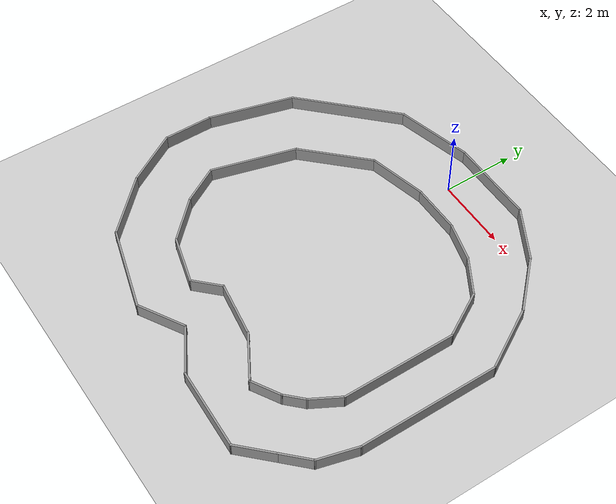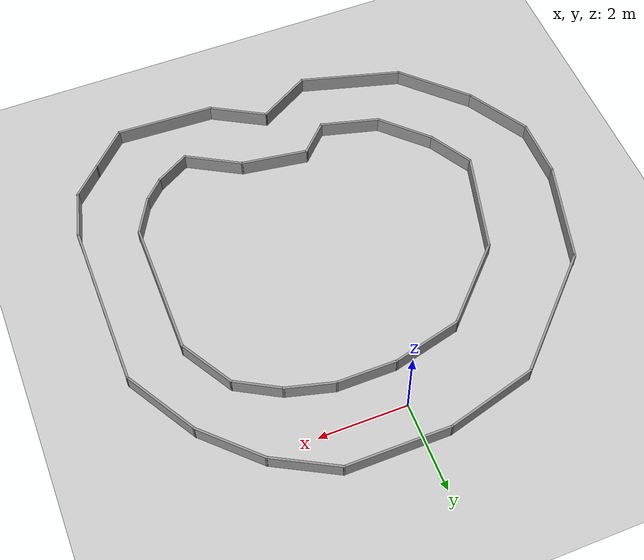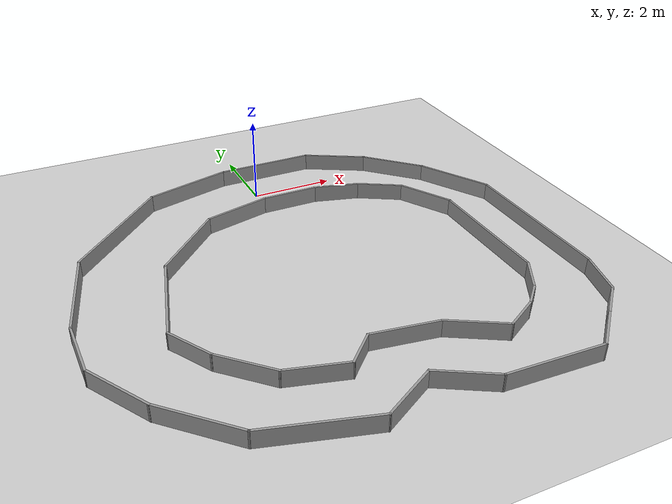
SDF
<sdf version="1.7">
 <world name="default">
  <light name="sun" type="directional">
   <pose>0 0 10 0 -0 0</pose>
   <diffuse>0.8 0.8 0.8 1</diffuse>
   <specular>0.2 0.2 0.2 1</specular>
   <attenuation>
    <range>1000</range>
    <constant>0.9</constant>
    <linear>0.01</linear>
    <quadratic>0.001</quadratic>
   </attenuation>
   <direction>-0.5 0.1 -0.9</direction>
   <spot><inner_angle>0</inner_angle><outer_angle>0</outer_angle><falloff>0</falloff></spot>
  </light>
  <model name="ground_plane">
   <static>1</static>
   <link name="link">
    <collision name="collision">
     <geometry><plane><normal>0 0 1</normal><size>100 100</size></plane></geometry>
     <surface>
      <contact><collide_bitmask>65535</collide_bitmask></contact>
      <friction><ode><mu>100</mu><mu2>50</mu2></ode></friction>
     </surface>
    </collision>
    <visual name="visual">
     <cast_shadows>0</cast_shadows>
     <geometry><plane><normal>0 0 1</normal><size>100 100</size></plane></geometry>
     <material>
      <script><uri>file://media/materials/scripts/gazebo.material</uri><name>Gazebo/Grey</name></script>
     </material>
    </visual>
   </link>
  </model>
  <gravity>0 0 -9.8</gravity>
  <magnetic_field>6e-06 2.3e-05 -4.2e-05</magnetic_field>
  <atmosphere type="adiabatic"/>
  <physics type="ode">
   <max_step_size>0.001</max_step_size>
   <real_time_factor>1</real_time_factor>
   <real_time_update_rate>1000</real_time_update_rate>
  </physics>
  <scene><ambient>0.4 0.4 0.4 1</ambient><background>0.7 0.7 0.7 1</background><shadows>1</shadows></scene>
  <audio><device>default</device></audio>
  <spherical_coordinates>
   <surface_model>EARTH_WGS84</surface_model>
   <latitude_deg>0</latitude_deg>
   <longitude_deg>0</longitude_deg>
   <elevation>0</elevation>
   <heading_deg>0</heading_deg>
  </spherical_coordinates>
  <model name="race_track">
   <pose>-0.084094 -3.95823 0 0 -0 0</pose>
   <link name="Wall_19">
    <collision name="Wall_19_Collision">
     <geometry><box><size>3.15 0.05 0.4</size></box></geometry>
     <pose>0 0 0.2 0 -0 0</pose>
    </collision>
    <visual name="Wall_19_Visual">
     <pose>0 0 0.2 0 -0 0</pose>
     <geometry><box><size>3.15 0.05 0.4</size></box></geometry>
     <material>
      <script><uri>file://media/materials/scripts/gazebo.material</uri><name>Gazebo/Grey</name></script>
      <ambient>1 1 1 1</ambient>
     </material>
     <meta><layer>0</layer></meta>
    </visual>
    <pose>4.01704 -0.456858 0 0 -0 1.5708</pose>
   </link>
   <link name="Wall_20">
    <collision name="Wall_20_Collision">
     <geometry><box><size>1.39988 0.05 0.4</size></box></geometry>
     <pose>0 0 0.2 0 -0 0</pose>
    </collision>
    <visual name="Wall_20_Visual">
     <pose>0 0 0.2 0 -0 0</pose>
     <geometry><box><size>1.39988 0.05 0.4</size></box></geometry>
     <material>
      <script><uri>file://media/materials/scripts/gazebo.material</uri><name>Gazebo/Grey</name></script>
      <ambient>1 1 1 1</ambient>
     </material>
     <meta><layer>0</layer></meta>
    </visual>
    <pose>3.67954 1.67764 0 0 -0 2.09444</pose>
   </link>
   <link name="Wall_21">
    <collision name="Wall_21_Collision">
     <geometry><box><size>1.15032 0.05 0.4</size></box></geometry>
     <pose>0 0 0.2 0 -0 0</pose>
    </collision>
    <visual name="Wall_21_Visual">
     <pose>0 0 0.2 0 -0 0</pose>
     <geometry><box><size>1.15032 0.05 0.4</size></box></geometry>
     <material>
      <script><uri>file://media/materials/scripts/gazebo.material</uri><name>Gazebo/Grey</name></script>
      <ambient>1 1 1 1</ambient>
     </material>
     <meta><layer>0</layer></meta>
    </visual>
    <pose>2.86554 2.53714 0 0 -0 2.61816</pose>
   </link>
   <link name="Wall_22">
    <collision name="Wall_22_Collision">
     <geometry><box><size>1.14958 0.05 0.4</size></box></geometry>
     <pose>0 0 0.2 0 -0 0</pose>
    </collision>
    <visual name="Wall_22_Visual">
     <pose>0 0 0.2 0 -0 0</pose>
     <geometry><box><size>1.14958 0.05 0.4</size></box></geometry>
     <material>
      <script><uri>file://media/materials/scripts/gazebo.material</uri><name>Gazebo/Grey</name></script>
      <ambient>1 1 1 1</ambient>
     </material>
     <meta><layer>0</layer></meta>
    </visual>
    <pose>1.85804 2.95464 0 0 -0 2.87941</pose>
   </link>
   <link name="Wall_23">
    <collision name="Wall_23_Collision">
     <geometry><box><size>1.40034 0.05 0.4</size></box></geometry>
     <pose>0 0 0.2 0 -0 0</pose>
    </collision>
    <visual name="Wall_23_Visual">
     <pose>0 0 0.2 0 -0 0</pose>
     <geometry><box><size>1.40034 0.05 0.4</size></box></geometry>
     <material>
      <script><uri>file://media/materials/scripts/gazebo.material</uri><name>Gazebo/Grey</name></script>
      <ambient>1 1 1 1</ambient>
     </material>
     <meta><layer>0</layer></meta>
    </visual>
    <pose>0.652043 3.09714 0 0 -0 3.14159</pose>
   </link>
   <link name="Wall_24">
    <collision name="Wall_24_Collision">
     <geometry><box><size>1.6428 0.05 0.4</size></box></geometry>
     <pose>0 0 0.2 0 -0 0</pose>
    </collision>
    <visual name="Wall_24_Visual">
     <pose>0 0 0.2 0 -0 0</pose>
     <geometry><box><size>1.6428 0.05 0.4</size></box></geometry>
     <material>
      <script><uri>file://media/materials/scripts/gazebo.material</uri><name>Gazebo/Grey</name></script>
      <ambient>1 1 1 1</ambient>
     </material>
     <meta><layer>0</layer></meta>
    </visual>
    <pose>-0.795957 2.90514 0 0 -0 -2.89814</pose>
   </link>
   <link name="Wall_25">
    <collision name="Wall_25_Collision">
     <geometry><box><size>2.17159 0.05 0.4</size></box></geometry>
     <pose>0 0 0.2 0 -0 0</pose>
    </collision>
    <visual name="Wall_25_Visual">
     <pose>0 0 0.2 0 -0 0</pose>
     <geometry><box><size>2.17159 0.05 0.4</size></box></geometry>
     <material>
      <script><uri>file://media/materials/scripts/gazebo.material</uri><name>Gazebo/Grey</name></script>
      <ambient>1 1 1 1</ambient>
     </material>
     <meta><layer>0</layer></meta>
    </visual>
    <pose>-2.31146 1.95564 0 0 -0 -2.34619</pose>
   </link>
   <link name="Wall_26">
    <collision name="Wall_26_Collision">
     <geometry><box><size>2.40039 0.05 0.4</size></box></geometry>
     <pose>0 0 0.2 0 -0 0</pose>
    </collision>
    <visual name="Wall_26_Visual">
     <pose>0 0 0.2 0 -0 0</pose>
     <geometry><box><size>2.40039 0.05 0.4</size></box></geometry>
     <material>
      <script><uri>file://media/materials/scripts/gazebo.material</uri><name>Gazebo/Grey</name></script>
      <ambient>1 1 1 1</ambient>
     </material>
     <meta><layer>0</layer></meta>
    </visual>
    <pose>-3.35796 0.063142 0 0 -0 -1.83249</pose>
   </link>
   <link name="Wall_27">
    <collision name="Wall_27_Collision">
     <geometry><box><size>1.15036 0.05 0.4</size></box></geometry>
     <pose>0 0 0.2 0 -0 0</pose>
    </collision>
    <visual name="Wall_27_Visual">
     <pose>0 0 0.2 0 -0 0</pose>
     <geometry><box><size>1.15036 0.05 0.4</size></box></geometry>
     <material>
      <script><uri>file://media/materials/scripts/gazebo.material</uri><name>Gazebo/Grey</name></script>
      <ambient>1 1 1 1</ambient>
     </material>
     <meta><layer>0</layer></meta>
    </visual>
    <pose>-3.38696 -1.54836 0 0 -0 -1.04737</pose>
   </link>
   <link name="Wall_28">
    <collision name="Wall_28_Collision">
     <geometry><box><size>1.40003 0.05 0.4</size></box></geometry>
     <pose>0 0 0.2 0 -0 0</pose>
    </collision>
    <visual name="Wall_28_Visual">
     <pose>0 0 0.2 0 -0 0</pose>
     <geometry><box><size>1.40003 0.05 0.4</size></box></geometry>
     <material>
      <script><uri>file://media/materials/scripts/gazebo.material</uri><name>Gazebo/Grey</name></script>
      <ambient>1 1 1 1</ambient>
     </material>
     <meta><layer>0</layer></meta>
    </visual>
    <pose>-2.63446 -2.50236 0 0 -0 -0.785398</pose>
   </link>
   <link name="Wall_29">
    <collision name="Wall_29_Collision">
     <geometry><box><size>1.39989 0.05 0.4</size></box></geometry>
     <pose>0 0 0.2 0 -0 0</pose>
    </collision>
    <visual name="Wall_29_Visual">
     <pose>0 0 0.2 0 -0 0</pose>
     <geometry><box><size>1.39989 0.05 0.4</size></box></geometry>
     <material>
      <script><uri>file://media/materials/scripts/gazebo.material</uri><name>Gazebo/Grey</name></script>
      <ambient>1 1 1 1</ambient>
     </material>
     <meta><layer>0</layer></meta>
    </visual>
    <pose>-1.50496 -3.15436 0 0 -0 -0.261509</pose>
   </link>
   <link name="Wall_30">
    <collision name="Wall_30_Collision">
     <geometry><box><size>0.899942 0.05 0.4</size></box></geometry>
     <pose>0 0 0.2 0 -0 0</pose>
    </collision>
    <visual name="Wall_30_Visual">
     <pose>0 0 0.2 0 -0 0</pose>
     <geometry><box><size>0.899942 0.05 0.4</size></box></geometry>
     <material>
      <script><uri>file://media/materials/scripts/gazebo.material</uri><name>Gazebo/Grey</name></script>
      <ambient>1 1 1 1</ambient>
     </material>
     <meta><layer>0</layer></meta>
    </visual>
    <pose>-0.552457 -3.02836 0 0 -0 0.785398</pose>
   </link>
   <link name="Wall_34">
    <collision name="Wall_34_Collision">
     <geometry><box><size>1.39988 0.05 0.4</size></box></geometry>
     <pose>0 0 0.2 0 -0 0</pose>
    </collision>
    <visual name="Wall_34_Visual">
     <pose>0 0 0.2 0 -0 0</pose>
     <geometry><box><size>1.39988 0.05 0.4</size></box></geometry>
     <material>
      <script><uri>file://media/materials/scripts/gazebo.material</uri><name>Gazebo/Grey</name></script>
      <ambient>1 1 1 1</ambient>
     </material>
     <meta><layer>0</layer></meta>
    </visual>
    <pose>1.84454 -3.28936 0 0 -0 -0.523649</pose>
   </link>
   <link name="Wall_35">
    <collision name="Wall_35_Collision">
     <geometry><box><size>0.900761 0.05 0.4</size></box></geometry>
     <pose>0 0 0.2 0 -0 0</pose>
    </collision>
    <visual name="Wall_35_Visual">
     <pose>0 0 0.2 0 -0 0</pose>
     <geometry><box><size>0.900761 0.05 0.4</size></box></geometry>
     <material>
      <script><uri>file://media/materials/scripts/gazebo.material</uri><name>Gazebo/Grey</name></script>
      <ambient>1 1 1 1</ambient>
     </material>
     <meta><layer>0</layer></meta>
    </visual>
    <pose>2.79754 -3.41436 0 0 -0 0.523083</pose>
   </link>
   <link name="Wall_36">
    <collision name="Wall_36_Collision">
     <geometry><box><size>0.649627 0.05 0.4</size></box></geometry>
     <pose>0 0 0.2 0 -0 0</pose>
    </collision>
    <visual name="Wall_36_Visual">
     <pose>0 0 0.2 0 -0 0</pose>
     <geometry><box><size>0.649627 0.05 0.4</size></box></geometry>
     <material>
      <script><uri>file://media/materials/scripts/gazebo.material</uri><name>Gazebo/Grey</name></script>
      <ambient>1 1 1 1</ambient>
     </material>
     <meta><layer>0</layer></meta>
    </visual>
    <pose>3.37804 -2.98986 0 0 -0 0.785398</pose>
   </link>
   <link name="Wall_37">
    <collision name="Wall_37_Collision">
     <geometry><box><size>0.931346 0.05 0.4</size></box></geometry>
     <pose>0 0 0.2 0 -0 0</pose>
    </collision>
    <visual name="Wall_37_Visual">
     <pose>0 0 0.2 0 -0 0</pose>
     <geometry><box><size>0.931346 0.05 0.4</size></box></geometry>
     <material>
      <script><uri>file://media/materials/scripts/gazebo.material</uri><name>Gazebo/Grey</name></script>
      <ambient>1 1 1 1</ambient>
     </material>
     <meta><layer>0</layer></meta>
    </visual>
    <pose>3.80354 -2.39236 0 0 -0 1.06502</pose>
   </link>
   <link name="Wall_39">
    <collision name="Wall_39_Collision">
     <geometry><box><size>1.15068 0.05 0.4</size></box></geometry>
     <pose>0 0 0.2 0 -0 0</pose>
    </collision>
    <visual name="Wall_39_Visual">
     <pose>0 0 0.2 0 -0 0</pose>
     <geometry><box><size>1.15068 0.05 0.4</size></box></geometry>
     <material>
      <script><uri>file://media/materials/scripts/gazebo.material</uri><name>Gazebo/Grey</name></script>
      <ambient>1 1 1 1</ambient>
     </material>
     <meta><layer>0</layer></meta>
    </visual>
    <pose>4.02404 -4.48336 0 0 -0 0.78604</pose>
   </link>
   <link name="Wall_40">
    <collision name="Wall_40_Collision">
     <geometry><box><size>0.899236 0.05 0.4</size></box></geometry>
     <pose>0 0 0.2 0 -0 0</pose>
    </collision>
    <visual name="Wall_40_Visual">
     <pose>0 0 0.2 0 -0 0</pose>
     <geometry><box><size>0.899236 0.05 0.4</size></box></geometry>
     <material>
      <script><uri>file://media/materials/scripts/gazebo.material</uri><name>Gazebo/Grey</name></script>
      <ambient>1 1 1 1</ambient>
     </material>
     <meta><layer>0</layer></meta>
    </visual>
    <pose>4.71354 -3.79386 0 0 -0 0.784566</pose>
   </link>
   <link name="Wall_41">
    <collision name="Wall_41_Collision">
     <geometry><box><size>1.15015 0.05 0.4</size></box></geometry>
     <pose>0 0 0.2 0 -0 0</pose>
    </collision>
    <visual name="Wall_41_Visual">
     <pose>0 0 0.2 0 -0 0</pose>
     <geometry><box><size>1.15015 0.05 0.4</size></box></geometry>
     <material>
      <script><uri>file://media/materials/scripts/gazebo.material</uri><name>Gazebo/Grey</name></script>
      <ambient>1 1 1 1</ambient>
     </material>
     <meta><layer>0</layer></meta>
    </visual>
    <pose>5.15654 -2.96236 0 0 -0 1.30885</pose>
   </link>
   <link name="Wall_42">
    <collision name="Wall_42_Collision">
     <geometry><box><size>3.869 0.05 0.4</size></box></geometry>
     <pose>0 0 0.2 0 -0 0</pose>
    </collision>
    <visual name="Wall_42_Visual">
     <pose>0 0 0.2 0 -0 0</pose>
     <geometry><box><size>3.869 0.05 0.4</size></box></geometry>
     <material>
      <script><uri>file://media/materials/scripts/gazebo.material</uri><name>Gazebo/Grey</name></script>
      <ambient>1 1 1 1</ambient>
     </material>
     <meta><layer>0</layer></meta>
    </visual>
    <pose>5.29904 -0.521358 0 0 -0 1.5708</pose>
   </link>
   <link name="Wall_43">
    <collision name="Wall_43_Collision">
     <geometry><box><size>1.89987 0.05 0.4</size></box></geometry>
     <pose>0 0 0.2 0 -0 0</pose>
    </collision>
    <visual name="Wall_43_Visual">
     <pose>0 0 0.2 0 -0 0</pose>
     <geometry><box><size>1.89987 0.05 0.4</size></box></geometry>
     <material>
      <script><uri>file://media/materials/scripts/gazebo.material</uri><name>Gazebo/Grey</name></script>
      <ambient>1 1 1 1</ambient>
     </material>
     <meta><layer>0</layer></meta>
    </visual>
    <pose>4.83654 2.18914 0 0 -0 2.09443</pose>
   </link>
   <link name="Wall_44">
    <collision name="Wall_44_Collision">
     <geometry><box><size>1.65089 0.05 0.4</size></box></geometry>
     <pose>0 0 0.2 0 -0 0</pose>
    </collision>
    <visual name="Wall_44_Visual">
     <pose>0 0 0.2 0 -0 0</pose>
     <geometry><box><size>1.65089 0.05 0.4</size></box></geometry>
     <material>
      <script><uri>file://media/materials/scripts/gazebo.material</uri><name>Gazebo/Grey</name></script>
      <ambient>1 1 1 1</ambient>
     </material>
     <meta><layer>0</layer></meta>
    </visual>
    <pose>3.80804 3.55614 0 0 -0 2.35619</pose>
   </link>
   <link name="Wall_45">
    <collision name="Wall_45_Collision">
     <geometry><box><size>1.60581 0.05 0.4</size></box></geometry>
     <pose>0 0 0.2 0 -0 0</pose>
    </collision>
    <visual name="Wall_45_Visual">
     <pose>0 0 0.2 0 -0 0</pose>
     <geometry><box><size>1.60581 0.05 0.4</size></box></geometry>
     <material>
      <script><uri>file://media/materials/scripts/gazebo.material</uri><name>Gazebo/Grey</name></script>
      <ambient>1 1 1 1</ambient>
     </material>
     <meta><layer>0</layer></meta>
    </visual>
    <pose>2.56104 4.49814 0 0 -0 2.63712</pose>
   </link>
   <link name="Wall_46">
    <collision name="Wall_46_Collision">
     <geometry><box><size>2.4 0.05 0.4</size></box></geometry>
     <pose>0 0 0.2 0 -0 0</pose>
    </collision>
    <visual name="Wall_46_Visual">
     <pose>0 0 0.2 0 -0 0</pose>
     <geometry><box><size>2.4 0.05 0.4</size></box></geometry>
     <material>
      <script><uri>file://media/materials/scripts/gazebo.material</uri><name>Gazebo/Grey</name></script>
      <ambient>1 1 1 1</ambient>
     </material>
     <meta><layer>0</layer></meta>
    </visual>
    <pose>0.705043 4.87414 0 0 -0 3.14159</pose>
   </link>
   <link name="Wall_47">
    <collision name="Wall_47_Collision">
     <geometry><box><size>2.1504 0.05 0.4</size></box></geometry>
     <pose>0 0 0.2 0 -0 0</pose>
    </collision>
    <visual name="Wall_47_Visual">
     <pose>0 0 0.2 0 -0 0</pose>
     <geometry><box><size>2.1504 0.05 0.4</size></box></geometry>
     <material>
      <script><uri>file://media/materials/scripts/gazebo.material</uri><name>Gazebo/Grey</name></script>
      <ambient>1 1 1 1</ambient>
     </material>
     <meta><layer>0</layer></meta>
    </visual>
    <pose>-1.48446 4.60264 0 0 -0 -2.8801</pose>
   </link>
   <link name="Wall_48">
    <collision name="Wall_48_Collision">
     <geometry><box><size>3.14996 0.05 0.4</size></box></geometry>
     <pose>0 0 0.2 0 -0 0</pose>
    </collision>
    <visual name="Wall_48_Visual">
     <pose>0 0 0.2 0 -0 0</pose>
     <geometry><box><size>3.14996 0.05 0.4</size></box></geometry>
     <material>
      <script><uri>file://media/materials/scripts/gazebo.material</uri><name>Gazebo/Grey</name></script>
      <ambient>1 1 1 1</ambient>
     </material>
     <meta><layer>0</layer></meta>
    </visual>
    <pose>-3.59496 3.23514 0 0 -0 -2.35619</pose>
   </link>
   <link name="Wall_49">
    <collision name="Wall_49_Collision">
     <geometry><box><size>2.40001 0.05 0.4</size></box></geometry>
     <pose>0 0 0.2 0 -0 0</pose>
    </collision>
    <visual name="Wall_49_Visual">
     <pose>0 0 0.2 0 -0 0</pose>
     <geometry><box><size>2.40001 0.05 0.4</size></box></geometry>
     <material>
      <script><uri>file://media/materials/scripts/gazebo.material</uri><name>Gazebo/Grey</name></script>
      <ambient>1 1 1 1</ambient>
     </material>
     <meta><layer>0</layer></meta>
    </visual>
    <pose>-4.99496 1.00414 0 0 -0 -1.83249</pose>
   </link>
   <link name="Wall_50">
    <collision name="Wall_50_Collision">
     <geometry><box><size>1.4 0.05 0.4</size></box></geometry>
     <pose>0 0 0.2 0 -0 0</pose>
    </collision>
    <visual name="Wall_50_Visual">
     <pose>0 0 0.2 0 -0 0</pose>
     <geometry><box><size>1.4 0.05 0.4</size></box></geometry>
     <material>
      <script><uri>file://media/materials/scripts/gazebo.material</uri><name>Gazebo/Grey</name></script>
      <ambient>1 1 1 1</ambient>
     </material>
     <meta><layer>0</layer></meta>
    </visual>
    <pose>-5.29896 -0.805858 0 0 -0 -1.5708</pose>
   </link>
   <link name="Wall_51">
    <collision name="Wall_51_Collision">
     <geometry><box><size>1.62354 0.05 0.4</size></box></geometry>
     <pose>0 0 0.2 0 -0 0</pose>
    </collision>
    <visual name="Wall_51_Visual">
     <pose>0 0 0.2 0 -0 0</pose>
     <geometry><box><size>1.62354 0.05 0.4</size></box></geometry>
     <material>
      <script><uri>file://media/materials/scripts/gazebo.material</uri><name>Gazebo/Grey</name></script>
      <ambient>1 1 1 1</ambient>
     </material>
     <meta><layer>0</layer></meta>
    </visual>
    <pose>-4.89896 -2.15836 0 0 -0 -1.03746</pose>
   </link>
   <link name="Wall_52">
    <collision name="Wall_52_Collision">
     <geometry><box><size>1.89979 0.05 0.4</size></box></geometry>
     <pose>0 0 0.2 0 -0 0</pose>
    </collision>
    <visual name="Wall_52_Visual">
     <pose>0 0 0.2 0 -0 0</pose>
     <geometry><box><size>1.89979 0.05 0.4</size></box></geometry>
     <material>
      <script><uri>file://media/materials/scripts/gazebo.material</uri><name>Gazebo/Grey</name></script>
      <ambient>1 1 1 1</ambient>
     </material>
     <meta><layer>0</layer></meta>
    </visual>
    <pose>-3.84496 -3.48986 0 0 -0 -0.785398</pose>
   </link>
   <link name="Wall_53">
    <collision name="Wall_53_Collision">
     <geometry><box><size>2.40822 0.05 0.4</size></box></geometry>
     <pose>0 0 0.2 0 -0 0</pose>
    </collision>
    <visual name="Wall_53_Visual">
     <pose>0 0 0.2 0 -0 0</pose>
     <geometry><box><size>2.40822 0.05 0.4</size></box></geometry>
     <material>
      <script><uri>file://media/materials/scripts/gazebo.material</uri><name>Gazebo/Grey</name></script>
      <ambient>1 1 1 1</ambient>
     </material>
     <meta><layer>0</layer></meta>
    </visual>
    <pose>-2.05596 -4.46336 0 0 -0 -0.274397</pose>
   </link>
   <link name="Wall_54">
    <collision name="Wall_54_Collision">
     <geometry><box><size>1.40006 0.05 0.4</size></box></geometry>
     <pose>0 0 0.2 0 -0 0</pose>
    </collision>
    <visual name="Wall_54_Visual">
     <pose>0 0 0.2 0 -0 0</pose>
     <geometry><box><size>1.40006 0.05 0.4</size></box></geometry>
     <material>
      <script><uri>file://media/materials/scripts/gazebo.material</uri><name>Gazebo/Grey</name></script>
      <ambient>1 1 1 1</ambient>
     </material>
     <meta><layer>0</layer></meta>
    </visual>
    <pose>-0.336457 -4.44536 0 0 -0 0.523649</pose>
   </link>
   <link name="Wall_55">
    <collision name="Wall_55_Collision">
     <geometry><box><size>1.39988 0.05 0.4</size></box></geometry>
     <pose>0 0 0.2 0 -0 0</pose>
    </collision>
    <visual name="Wall_55_Visual">
     <pose>0 0 0.2 0 -0 0</pose>
     <geometry><box><size>1.39988 0.05 0.4</size></box></geometry>
     <material>
      <script><uri>file://media/materials/scripts/gazebo.material</uri><name>Gazebo/Grey</name></script>
      <ambient>1 1 1 1</ambient>
     </material>
     <meta><layer>0</layer></meta>
    </visual>
    <pose>0.832543 -4.44536 0 0 -0 -0.523649</pose>
   </link>
   <link name="Wall_56">
    <collision name="Wall_56_Collision">
     <geometry><box><size>2.26982 0.05 0.4</size></box></geometry>
     <pose>0 0 0.2 0 -0 0</pose>
    </collision>
    <visual name="Wall_56_Visual">
     <pose>0 0 0.2 0 -0 0</pose>
     <geometry><box><size>2.26982 0.05 0.4</size></box></geometry>
     <material>
      <script><uri>file://media/materials/scripts/gazebo.material</uri><name>Gazebo/Grey</name></script>
      <ambient>1 1 1 1</ambient>
     </material>
     <meta><layer>0</layer></meta>
    </visual>
    <pose>2.52604 -4.82786 0 0 -0 -0.040555</pose>
   </link>
   <link name="Wall_58">
    <collision name="Wall_58_Collision">
     <geometry><box><size>1.5785 0.05 0.4</size></box></geometry>
     <pose>0 0 0.2 0 -0 0</pose>
    </collision>
    <visual name="Wall_58_Visual">
     <pose>0 0 0.2 0 -0 0</pose>
     <geometry><box><size>1.5785 0.05 0.4</size></box></geometry>
     <material>
      <script><uri>file://media/materials/scripts/gazebo.material</uri><name>Gazebo/Grey</name></script>
      <ambient>1 1 1 1</ambient>
     </material>
     <meta><layer>0</layer></meta>
    </visual>
    <pose>0.504043 -2.83986 0 0 -0 -0.147078</pose>
   </link>
   <static>1</static>
  </model>
 </world>
</sdf>
